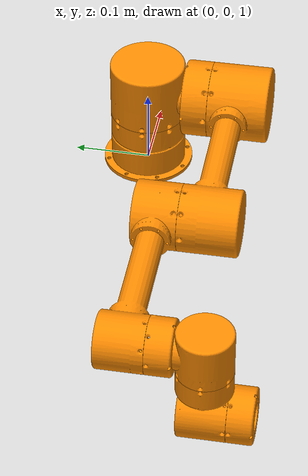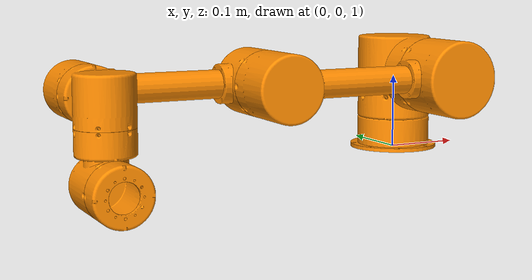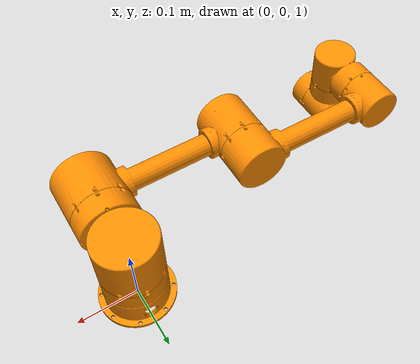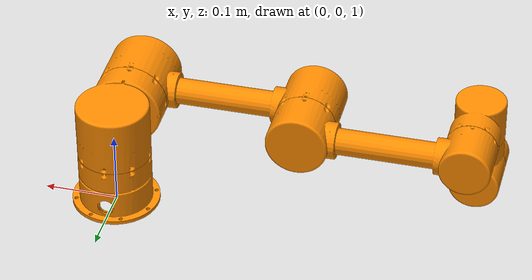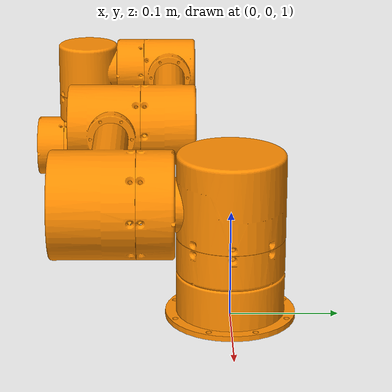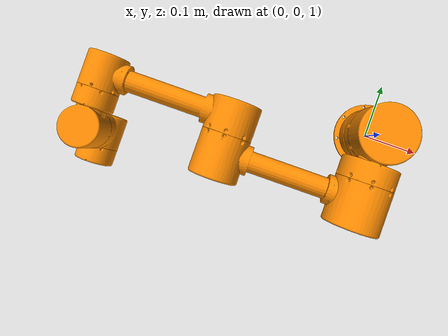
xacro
<?xml version="1.0" ?>
<robot xmlns:xacro="http://www.ros.org/wiki/xacro"
  name="mra6">

  <!-- gazebo plugin -->
  <xacro:include filename="$(find mra6_gazebo)/urdf/mra6_gazebo_material.xacro" />
  <!-- transmission -->
  <xacro:include filename="$(find mra6_gazebo)/urdf/mra6_gazebo_transmission.xacro" />
  <!-- plugin -->
  <xacro:include filename="$(find mra6_gazebo)/urdf/gazebo_plugin.xacro" />

  <link name="world"/>

  <link
    name="base_link">
    <inertial>
      <origin
        xyz="-6.9899E-08 -0.0008109 1.0"
        rpy="0 0 0" />
      <mass
        value="0.32459" />
      <inertia
        ixx="0.000391"
        ixy="8.4856E-10"
        ixz="3.069E-10"
        iyy="0.00040335"
        iyz="-1.4622E-06"
        izz="0.00064727" />
    </inertial>
    <visual>
      <origin
        xyz="0 0 0"
        rpy="0 0 0" />
      <geometry>
        <mesh
          filename="package://mra6_description/meshes/base_link.STL" />
      </geometry>
      <material
        name="">
        <color
          rgba="1 0.54902 0 1" />
      </material>
    </visual>
    <collision>
      <origin
        xyz="0 0 0"
        rpy="0 0 0" />
      <geometry>
        <mesh
          filename="package://mra6_description/meshes/base_link.STL" />
      </geometry>
    </collision>
  </link>

  <!-- Fixed joint -->
  <joint name="fixed" type="fixed">
    <origin xyz="0 0 1.0" rpy="0 0 0"/>
    <parent link="world"/>
    <child link="base_link"/>
  </joint>

  <link
    name="Link1">
    <inertial>
      <origin
        xyz="-6.74372403598355E-10 5.27749662761165E-11 0.0551527830028243"
        rpy="0 0 0" />
      <mass
        value="0.184803968740656" />
      <inertia
        ixx="0.000195187615443863"
        ixy="-2.92759575067244E-12"
        ixz="6.89837577426477E-12"
        iyy="0.000195187609249399"
        iyz="-4.80136513702014E-12"
        izz="0.000343832621750447" />
    </inertial>
    <visual>
      <origin
        xyz="0 0 0"
        rpy="0 0 0" />
      <geometry>
        <mesh
          filename="package://mra6_description/meshes/Link1.STL" />
      </geometry>
      <material
        name="">
        <color
          rgba="1 0.549019607843137 0 1" />
      </material>
    </visual>
    <collision>
      <origin
        xyz="0 0 0"
        rpy="0 0 0" />
      <geometry>
        <mesh
          filename="package://mra6_description/meshes/Link1.STL" />
      </geometry>
    </collision>
  </link>

  <joint
    name="fixed_joint1"
    type="fixed">
    <origin
      xyz="0 0 0"
      rpy="0 0 0" />
    <parent
      link="base_link" />
    <child
      link="Link1" />
    <axis
      xyz="0 0 0" />
  </joint>

  <link
    name="Link2">
    <inertial>
      <origin
        xyz="-3.30788696145621E-09 -0.0309551613308166 0.109822612024743"
        rpy="0 0 0" />
      <mass
        value="0.402690036680296" />
      <inertia
        ixx="0.000905458142804875"
        ixy="-6.34561982484864E-10"
        ixz="4.08962832630573E-10"
        iyy="0.000702281504451382"
        iyz="-8.76989863108077E-06"
        izz="0.00102166682835308" />
    </inertial>
    <visual>
      <origin
        xyz="0 0 0"
        rpy="0 0 0" />
      <geometry>
        <mesh
          filename="package://mra6_description/meshes/Link2.STL" />
      </geometry>
      <material
        name="">
        <color
          rgba="1 0.549019607843137 0 1" />
      </material>
    </visual>
    <collision>
      <origin
        xyz="0 0 0"
        rpy="0 0 0" />
      <geometry>
        <mesh
          filename="package://mra6_description/meshes/Link2.STL" />
      </geometry>
    </collision>
  </link>
  <joint
    name="J1"
    type="revolute">
    <origin
      xyz="0 0 0"
      rpy="0 0 0" />
    <parent
      link="Link1" />
    <child
      link="Link2" />
    <axis
      xyz="0 0 1" />
    <limit
      lower="-3.04"
      upper="3.04"
      effort="0"
      velocity="0" />
  </joint>
  <link
    name="Link3">
    <inertial>
      <origin
        xyz="-0.112952866110464 3.31668742192814E-08 0.1178003307345"
        rpy="0 0 0" />
      <mass
        value="0.592316735310971" />
      <inertia
        ixx="0.00063623988332474"
        ixy="2.39852284409426E-09"
        ixz="-3.43043925311494E-05"
        iyy="0.00643654537644761"
        iyz="-6.58453602703965E-12"
        izz="0.00659702638683348" />
    </inertial>
    <visual>
      <origin
        xyz="0 0 0"
        rpy="0 0 0" />
      <geometry>
        <mesh
          filename="package://mra6_description/meshes/Link3.STL" />
      </geometry>
      <material
        name="">
        <color
          rgba="1 0.549019607843137 0 1" />
      </material>
    </visual>
    <collision>
      <origin
        xyz="0 0 0"
        rpy="0 0 0" />
      <geometry>
        <mesh
          filename="package://mra6_description/meshes/Link3.STL" />
      </geometry>
    </collision>
  </link>
  <joint
    name="J2"
    type="revolute">
    <origin
      xyz="0 0 0.108"
      rpy="1.5708 0 0" />
    <parent
      link="Link2" />
    <child
      link="Link3" />
    <axis
      xyz="0 0 1" />
    <limit
      lower="-3.04"
      upper="3.04"
      effort="0"
      velocity="0" />
  </joint>
  <link
    name="Link4">
    <inertial>
      <origin
        xyz="-0.1066077691049 1.32881232406401E-08 0.0574159052405117"
        rpy="0 0 0" />
      <mass
        value="0.473772723283158" />
      <inertia
        ixx="0.000328783981126777"
        ixy="-2.10069568238447E-09"
        ixz="-2.30501777030549E-05"
        iyy="0.00396296050932036"
        iyz="-2.07148315763596E-09"
        izz="0.00404929909084596" />
    </inertial>
    <visual>
      <origin
        xyz="0 0 0"
        rpy="0 0 0" />
      <geometry>
        <mesh
          filename="package://mra6_description/meshes/Link4.STL" />
      </geometry>
      <material
        name="">
        <color
          rgba="1 0.549019607843137 0 1" />
      </material>
    </visual>
    <collision>
      <origin
        xyz="0 0 0"
        rpy="0 0 0" />
      <geometry>
        <mesh
          filename="package://mra6_description/meshes/Link4.STL" />
      </geometry>
    </collision>
  </link>
  <joint
    name="J3"
    type="revolute">
    <origin
      xyz="-0.244 0 0"
      rpy="0 0 0" />
    <parent
      link="Link3" />
    <child
      link="Link4" />
    <axis
      xyz="0 0 1" />
    <limit
      lower="-2.09"
      upper="2.09"
      effort="0"
      velocity="0" />
  </joint>
  <link
    name="Link5">
    <inertial>
      <origin
        xyz="-4.68103922290908E-08 -0.00114362214534577 0.128955361124478"
        rpy="0 0 0" />
      <mass
        value="0.202874873294981" />
      <inertia
        ixx="0.000245913373372969"
        ixy="1.70539142093252E-09"
        ixz="9.94608686745797E-11"
        iyy="0.00026197235868541"
        iyz="1.00588419056724E-05"
        izz="0.000187364745659433" />
    </inertial>
    <visual>
      <origin
        xyz="0 0 0"
        rpy="0 0 0" />
      <geometry>
        <mesh
          filename="package://mra6_description/meshes/Link5.STL" />
      </geometry>
      <material
        name="">
        <color
          rgba="1 0.549019607843137 0 1" />
      </material>
    </visual>
    <collision>
      <origin
        xyz="0 0 0"
        rpy="0 0 0" />
      <geometry>
        <mesh
          filename="package://mra6_description/meshes/Link5.STL" />
      </geometry>
    </collision>
  </link>
  <joint
    name="J4"
    type="revolute">
    <origin
      xyz="-0.228 0 0"
      rpy="0 0 0" />
    <parent
      link="Link4" />
    <child
      link="Link5" />
    <axis
      xyz="0 0 1" />
    <limit
      lower="-3.04"
      upper="3.04"
      effort="0"
      velocity="0" />
  </joint>
  <link
    name="Link6">
    <inertial>
      <origin
        xyz="4.56297755135893E-08 0.00114362336157564 0.0729553611244753"
        rpy="0 0 0" />
      <mass
        value="0.202874873294981" />
      <inertia
        ixx="0.000245913372808604"
        ixy="1.70511751500744E-09"
        ixz="-1.15205099289294E-10"
        iyy="0.000261972358685429"
        iyz="-1.00588329860581E-05"
        izz="0.000187364745095092" />
    </inertial>
    <visual>
      <origin
        xyz="0 0 0"
        rpy="0 0 0" />
      <geometry>
        <mesh
          filename="package://mra6_description/meshes/Link6.STL" />
      </geometry>
      <material
        name="">
        <color
          rgba="1 0.549019607843137 0 1" />
      </material>
    </visual>
    <collision>
      <origin
        xyz="0 0 0"
        rpy="0 0 0" />
      <geometry>
        <mesh
          filename="package://mra6_description/meshes/Link6.STL" />
      </geometry>
    </collision>
  </link>
  <joint
    name="J5"
    type="revolute">
    <origin
      xyz="0 0 0.153"
      rpy="1.5708 0 0" />
    <parent
      link="Link5" />
    <child
      link="Link6" />
    <axis
      xyz="0 0 -1" />
    <limit
      lower="-3.04"
      upper="3.04"
      effort="0"
      velocity="0" />
  </joint>
  <link
    name="Link7">
    <inertial>
      <origin
        xyz="-1.33627503506872E-09 1.37659412861868E-09 0.0488817082462309"
        rpy="0 0 0" />
      <mass
        value="0.0896211819235301" />
      <inertia
        ixx="5.33822622222197E-05"
        ixy="2.10561024502818E-12"
        ixz="-4.98909764083514E-12"
        iyy="5.33822700832826E-05"
        iyz="1.48979827135486E-12"
        izz="8.69474020004336E-05" />
    </inertial>
    <visual>
      <origin
        xyz="0 0 0"
        rpy="0 0 0" />
      <geometry>
        <mesh
          filename="package://mra6_description/meshes/Link7.STL" />
      </geometry>
      <material
        name="">
        <color
          rgba="1 0.549019607843137 0 1" />
      </material>
    </visual>
    <collision>
      <origin
        xyz="0 0 0"
        rpy="0 0 0" />
      <geometry>
        <mesh
          filename="package://mra6_description/meshes/Link7.STL" />
      </geometry>
    </collision>
  </link>
  <joint
    name="J6"
    type="revolute">
    <origin
      xyz="0 0 0.097"
      rpy="-1.5708 0 0" />
    <parent
      link="Link6" />
    <child
      link="Link7" />
    <axis
      xyz="0 0 1" />
    <limit
      lower="-3.04"
      upper="3.04"
      effort="0"
      velocity="0" />
  </joint>
  <xacro:mra6_gazebo_transmission prefix=" " />
  <xacro:mra6_gazebo_material prefix=" " />

</robot>
